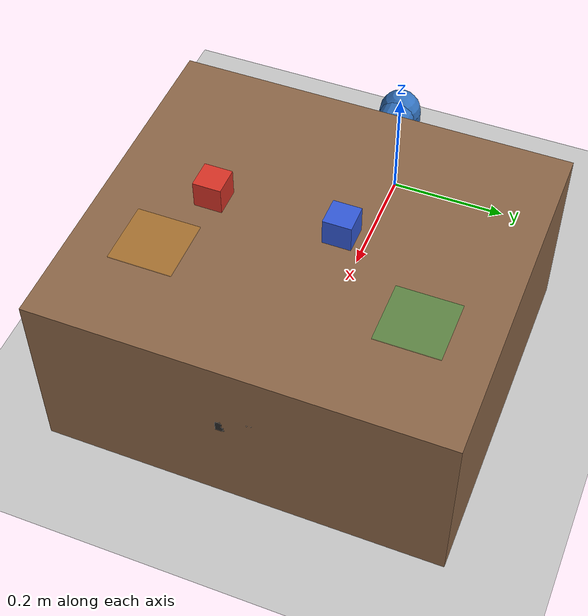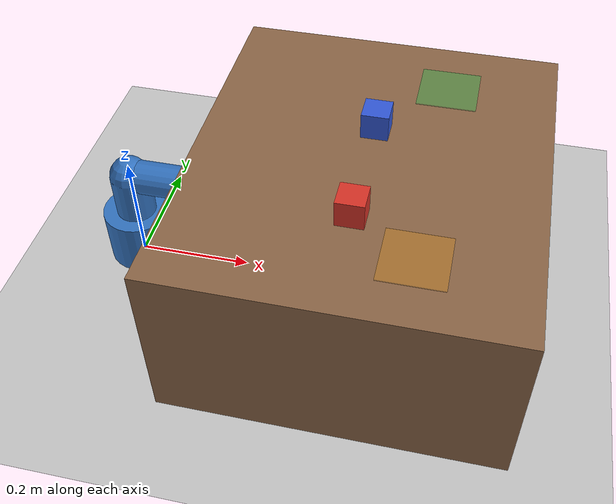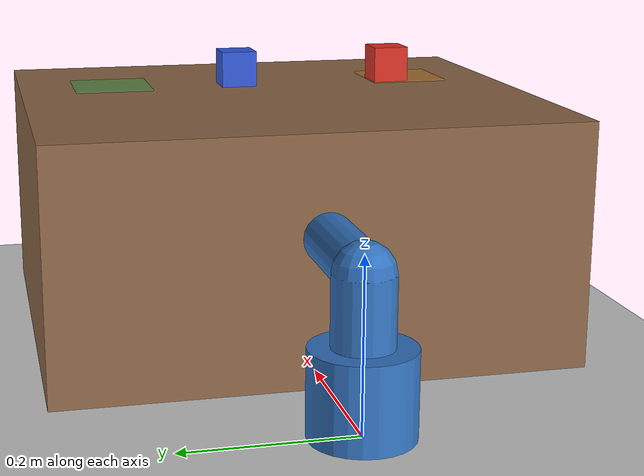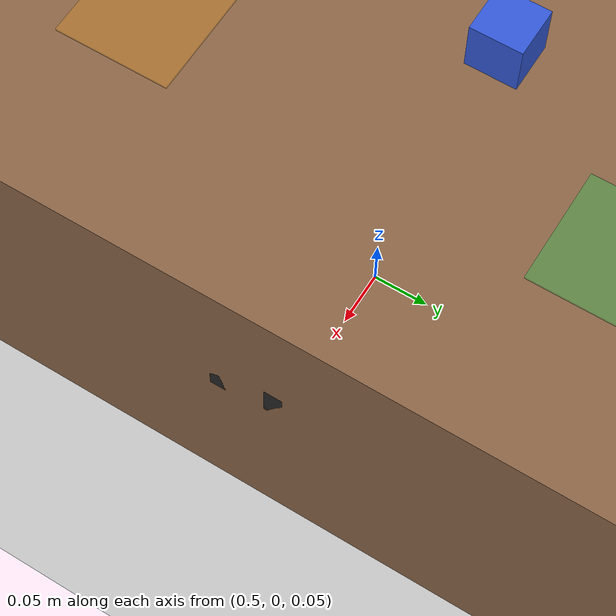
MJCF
<mujoco model="mini_arm_grasp">
  <compiler angle="radian" autolimits="true"/>
  <option timestep="0.002" gravity="0 0 -9.81" integrator="implicitfast"/>

  <default>
    <joint damping="1.5" frictionloss="0.05"/>
    <geom friction="1.2 0.02 0.001" solref="0.01 1" condim="4"/>
    <position kp="60" ctrlrange="-3.14 3.14"/>
    <default class="finger">
      <joint type="slide" range="0 0.045" damping="8"/>
      <position kp="400" ctrlrange="0 0.045"/>
    </default>
    <default class="noncollide">
      <geom contype="0" conaffinity="0"/>
    </default>
  </default>

  <asset>
    <texture type="skybox" builtin="gradient" rgb1="0.75 0.82 0.92" rgb2="0.95 0.96 0.98" width="256" height="256"/>
    <texture name="grid" type="2d" builtin="checker" rgb1="0.85 0.85 0.85" rgb2="0.7 0.7 0.7" width="300" height="300"/>
    <material name="grid" texture="grid" texrepeat="4 4" reflectance="0.05"/>
    <material name="table_mat" rgba="0.55 0.4 0.28 1"/>
    <material name="arm_mat" rgba="0.2 0.45 0.75 1"/>
    <material name="finger_mat" rgba="0.15 0.15 0.15 1"/>
    <material name="cube_mat" rgba="0.85 0.2 0.15 1"/>
    <material name="cube_b_mat" rgba="0.2 0.35 0.85 1"/>
    <material name="target_mat" rgba="0.15 0.75 0.3 0.35"/>
  </asset>

  <worldbody>
    <camera name="front" pos="0.25 -1.15 0.95" xyaxes="1 0 0 0 0.6 0.75"/>
    <light pos="0 -0.3 1.5" dir="0.1 0.2 -1" diffuse="0.9 0.9 0.85" specular="0.2 0.2 0.2"/>
    <light pos="0.6 0.6 1.2" dir="-0.3 -0.3 -1" diffuse="0.4 0.4 0.4"/>
    <geom name="floor" type="plane" size="1.2 1.2 0.1" material="grid"/>

    <!-- table -->
    <body name="table" pos="0.42 0 0.15">
      <geom type="box" size="0.28 0.32 0.15" material="table_mat"/>
    </body>

    <!-- rack slot markers: two well-separated placement zones (stand-in for dishwasher slots) -->
    <site name="slot_a_site" pos="0.52 -0.20 0.301" size="0.05 0.05 0.001" type="box" rgba="0.85 0.55 0.1 0.4"/>
    <site name="slot_b_site" pos="0.52 0.20 0.301" size="0.05 0.05 0.001" type="box" rgba="0.15 0.75 0.3 0.4"/>

    <!-- cube A: placed first, becomes the base of the stack -->
    <body name="cube_a" pos="0.42 -0.15 0.335">
      <freejoint name="cube_a_free"/>
      <geom name="cube_a_geom" type="box" size="0.022 0.022 0.022" material="cube_mat" mass="0.03"/>
    </body>

    <!-- cube B: placed second, stacked on top of cube A -->
    <body name="cube_b" pos="0.42 0.05 0.335">
      <freejoint name="cube_b_free"/>
      <geom name="cube_b_geom" type="box" size="0.022 0.022 0.022" material="cube_b_mat" mass="0.03"/>
    </body>

    <!-- arm base -->
    <body name="base" pos="0 0 0.05">
      <geom type="cylinder" size="0.06 0.05" material="arm_mat" class="noncollide"/>
      <body name="link1" pos="0 0 0.05">
        <joint name="base_yaw" type="hinge" axis="0 0 1" range="-3.0 3.0"/>
        <geom type="capsule" fromto="0 0 0 0 0 0.08" size="0.035" material="arm_mat" class="noncollide"/>
        <body name="link2" pos="0 0 0.08">
          <joint name="shoulder_pitch" type="hinge" axis="0 1 0" range="-1.6 1.6"/>
          <geom type="capsule" fromto="0 0 0 0.28 0 0" size="0.03" material="arm_mat" class="noncollide"/>
          <body name="link3" pos="0.28 0 0">
            <joint name="elbow_pitch" type="hinge" axis="0 1 0" range="-2.6 0.2"/>
            <geom type="capsule" fromto="0 0 0 0.24 0 0" size="0.026" material="arm_mat" class="noncollide"/>
            <body name="link4" pos="0.24 0 0">
              <joint name="wrist_pitch" type="hinge" axis="0 1 0" range="-2.0 2.0"/>
              <geom type="capsule" fromto="0 0 0 0.09 0 0" size="0.02" material="arm_mat" class="noncollide"/>
              <body name="gripper_base" pos="0.09 0 0">
                <geom type="box" size="0.02 0.05 0.025" material="finger_mat" class="noncollide"/>
                <site name="ee_site" pos="0.06 0 0" size="0.008" rgba="1 1 0 1"/>
                <body name="finger_l" pos="0.02 0.024 0">
                  <joint name="finger_l_joint" class="finger" axis="0 1 0"/>
                  <geom type="box" size="0.035 0.008 0.018" pos="0.035 0 0" material="finger_mat" friction="1.8 0.03 0.002"/>
                </body>
                <body name="finger_r" pos="0.02 -0.024 0">
                  <joint name="finger_r_joint" class="finger" axis="0 -1 0"/>
                  <geom type="box" size="0.035 0.008 0.018" pos="0.035 0 0" material="finger_mat" friction="1.8 0.03 0.002"/>
                </body>
              </body>
            </body>
          </body>
        </body>
      </body>
    </body>
  </worldbody>

  <actuator>
    <position name="a_base_yaw" joint="base_yaw"/>
    <position name="a_shoulder" joint="shoulder_pitch"/>
    <position name="a_elbow" joint="elbow_pitch"/>
    <position name="a_wrist" joint="wrist_pitch"/>
    <position name="a_finger_l" joint="finger_l_joint" class="finger"/>
    <position name="a_finger_r" joint="finger_r_joint" class="finger"/>
  </actuator>
</mujoco>
